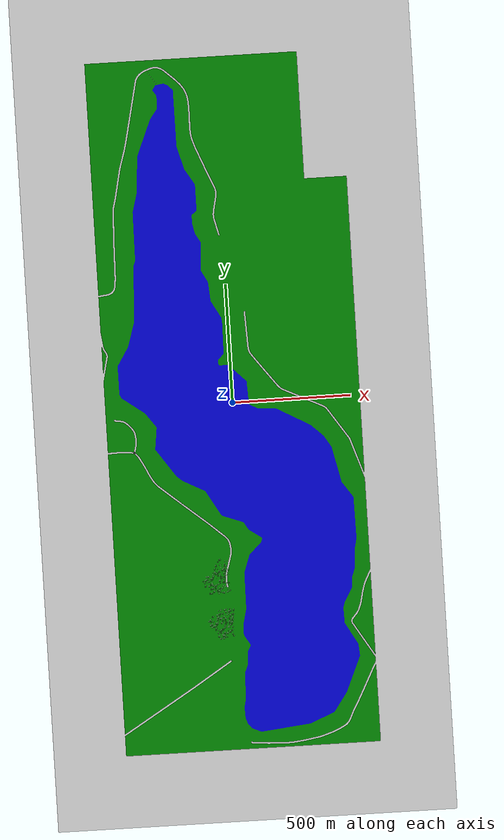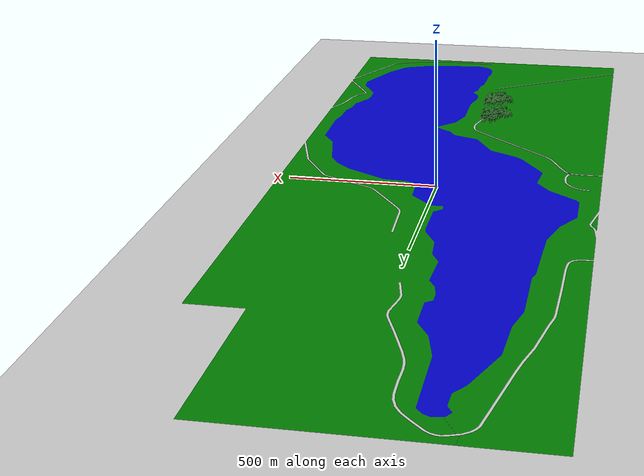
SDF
<?xml version="1.0"?>
<sdf version="1.4">
  <world name="default">
    <include>
      <uri>model://sun</uri>
    </include>
    <model name="Farlain_Lake">
      <pose>0 0 0  0 0 0</pose>
      <static>true</static>
      <link name="body">
        <collision name="collision">
          <geometry>
            <plane>
              <normal>0 0 1</normal>
              <size>500 500</size>
            </plane>
           </geometry>
        </collision>
        <visual name="visual">
          <geometry>
            <mesh><uri>farlain.dae</uri></mesh>
          </geometry>
        </visual>
      </link>
    </model>
    <model name="muddy_bottom">
      <pose>0 0 -10  0 0 0</pose>
      <static>true</static>
      <link name="mud">
        <collision name="collision">
          <geometry>
            <plane>
              <normal>0 0 1</normal>
              <size>500 500</size>
            </plane>
          </geometry>
        </collision>
        <visual name="visual">
          <geometry>
            <plane>
              <normal>0 0 1</normal>
              <size>500 500</size>
            </plane>
          </geometry>
          <material>Gazebo/Grey</material>
        </visual>
      </link>
    </model>
  </world>
</sdf>
